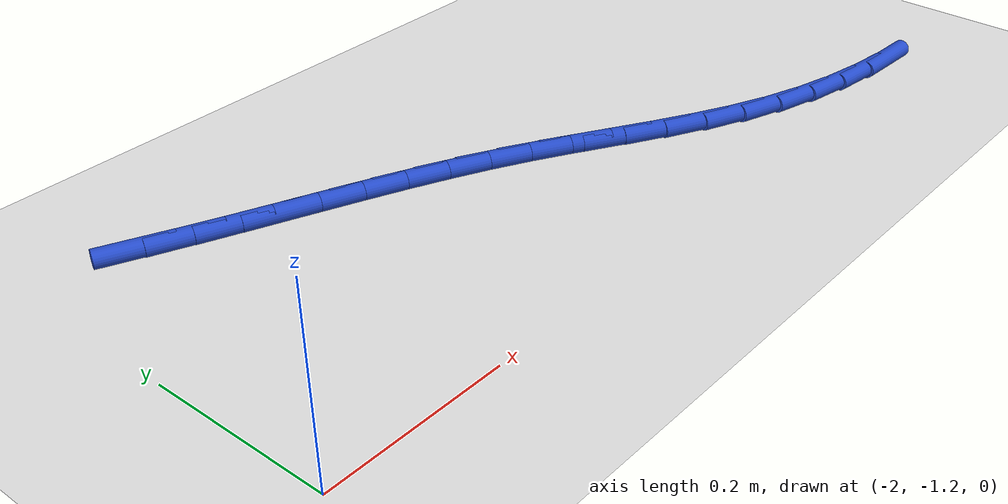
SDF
<sdf version="1.6">
 <world name="default">
  <model name="ground_plane">
   <static>1</static>
   <link name="link">
    <collision name="collision">
     <geometry><plane><normal>0 0 1</normal><size>100 100</size></plane></geometry>
     <surface><friction><ode><mu>100</mu><mu2>50</mu2></ode></friction></surface>
    </collision>
    <visual name="visual">
     <cast_shadows>0</cast_shadows>
     <geometry><plane><normal>0 0 1</normal><size>100 100</size></plane></geometry>
     <material>
      <script><uri>file://media/materials/scripts/gazebo.material</uri><name>Gazebo/WhiteGlow</name></script>
     </material>
    </visual>
   </link>
  </model>
  <model name="line">
   <link name="link_104">
    <pose>-1.89895759418302 -0.8300351882979553 0.01 0 1.57 -0.422106610386485</pose>
    <collision name="collision">
     <geometry><cylinder><radius>0.01</radius><length>0.08</length></cylinder></geometry>
    </collision>
    <visual name="visual">
     <material>
      <script><name>Gazebo/Blue</name><uri>file://media/materials/scripts/gazebo.material</uri></script>
     </material>
     <geometry><cylinder><radius>0.01</radius><length>0.08</length></cylinder></geometry>
    </visual>
   </link>
   <link name="link_105">
    <pose>-1.8554288558025298 -0.8495840167339894 0.01 0 1.57 -0.4031094485971626</pose>
    <collision name="collision">
     <geometry><cylinder><radius>0.01</radius><length>0.08</length></cylinder></geometry>
    </collision>
    <visual name="visual">
     <material>
      <script><name>Gazebo/Blue</name><uri>file://media/materials/scripts/gazebo.material</uri></script>
     </material>
     <geometry><cylinder><radius>0.01</radius><length>0.08</length></cylinder></geometry>
    </visual>
   </link>
   <link name="link_106">
    <pose>-1.812084770171128 -0.8680686798625749 0.01 0 1.57 -0.3915363712357688</pose>
    <collision name="collision">
     <geometry><cylinder><radius>0.01</radius><length>0.08</length></cylinder></geometry>
    </collision>
    <visual name="visual">
     <material>
      <script><name>Gazebo/Blue</name><uri>file://media/materials/scripts/gazebo.material</uri></script>
     </material>
     <geometry><cylinder><radius>0.01</radius><length>0.08</length></cylinder></geometry>
    </visual>
   </link>
   <link name="link_107">
    <pose>-1.7689749899728195 -0.8858666395894286 0.01 0 1.57 -0.38769974921096145</pose>
    <collision name="collision">
     <geometry><cylinder><radius>0.01</radius><length>0.08</length></cylinder></geometry>
    </collision>
    <visual name="visual">
     <material>
      <script><name>Gazebo/Blue</name><uri>file://media/materials/scripts/gazebo.material</uri></script>
     </material>
     <geometry><cylinder><radius>0.01</radius><length>0.08</length></cylinder></geometry>
    </visual>
   </link>
   <link name="link_108">
    <pose>-1.7261491678916094 -0.9033553578202694 0.01 0 1.57 -0.39181669513704925</pose>
    <collision name="collision">
     <geometry><cylinder><radius>0.01</radius><length>0.08</length></cylinder></geometry>
    </collision>
    <visual name="visual">
     <material>
      <script><name>Gazebo/Blue</name><uri>file://media/materials/scripts/gazebo.material</uri></script>
     </material>
     <geometry><cylinder><radius>0.01</radius><length>0.08</length></cylinder></geometry>
    </visual>
   </link>
   <link name="link_109">
    <pose>-1.6836569566115018 -0.920912296460815 0.01 0 1.57 -0.40400726017109834</pose>
    <collision name="collision">
     <geometry><cylinder><radius>0.01</radius><length>0.08</length></cylinder></geometry>
    </collision>
    <visual name="visual">
     <material>
      <script><name>Gazebo/Blue</name><uri>file://media/materials/scripts/gazebo.material</uri></script>
     </material>
     <geometry><cylinder><radius>0.01</radius><length>0.08</length></cylinder></geometry>
    </visual>
   </link>
   <link name="link_110">
    <pose>-1.6415480088165018 -0.9389149174167833 0.01 0 1.57 -0.42428073140122313</pose>
    <collision name="collision">
     <geometry><cylinder><radius>0.01</radius><length>0.08</length></cylinder></geometry>
    </collision>
    <visual name="visual">
     <material>
      <script><name>Gazebo/Blue</name><uri>file://media/materials/scripts/gazebo.material</uri></script>
     </material>
     <geometry><cylinder><radius>0.01</radius><length>0.08</length></cylinder></geometry>
    </visual>
   </link>
   <link name="link_111">
    <pose>-1.5998719771906127 -0.9577406825938926 0.01 0 1.57 -0.4525096705752231</pose>
    <collision name="collision">
     <geometry><cylinder><radius>0.01</radius><length>0.08</length></cylinder></geometry>
    </collision>
    <visual name="visual">
     <material>
      <script><name>Gazebo/Blue</name><uri>file://media/materials/scripts/gazebo.material</uri></script>
     </material>
     <geometry><cylinder><radius>0.01</radius><length>0.08</length></cylinder></geometry>
    </visual>
   </link>
   <link name="link_112">
    <pose>-1.5586785144178408 -0.9777670538978604 0.01 0 1.57 -0.4883415551285724</pose>
    <collision name="collision">
     <geometry><cylinder><radius>0.01</radius><length>0.08</length></cylinder></geometry>
    </collision>
    <visual name="visual">
     <material>
      <script><name>Gazebo/Blue</name><uri>file://media/materials/scripts/gazebo.material</uri></script>
     </material>
     <geometry><cylinder><radius>0.01</radius><length>0.08</length></cylinder></geometry>
    </visual>
   </link>
   <link name="link_113">
    <pose>-1.518016472378064 -0.9993691601938308 0.01 0 1.57 -0.5230682240721867</pose>
    <collision name="collision">
     <geometry><cylinder><radius>0.01</radius><length>0.08</length></cylinder></geometry>
    </collision>
    <visual name="visual">
     <material>
      <script><name>Gazebo/Blue</name><uri>file://media/materials/scripts/gazebo.material</uri></script>
     </material>
     <geometry><cylinder><radius>0.01</radius><length>0.08</length></cylinder></geometry>
    </visual>
   </link>
   <link name="link_114">
    <pose>-1.4778086017797263 -1.0225547506850414 0.01 0 1.57 -0.5396160837585424</pose>
    <collision name="collision">
     <geometry><cylinder><radius>0.01</radius><length>0.08</length></cylinder></geometry>
    </collision>
    <visual name="visual">
     <material>
      <script><name>Gazebo/Blue</name><uri>file://media/materials/scripts/gazebo.material</uri></script>
     </material>
     <geometry><cylinder><radius>0.01</radius><length>0.08</length></cylinder></geometry>
    </visual>
   </link>
   <link name="link_115">
    <pose>-1.4377152155546915 -1.0465669956216803 0.01 0 1.57 -0.5363248755173923</pose>
    <collision name="collision">
     <geometry><cylinder><radius>0.01</radius><length>0.08</length></cylinder></geometry>
    </collision>
    <visual name="visual">
     <material>
      <script><name>Gazebo/Blue</name><uri>file://media/materials/scripts/gazebo.material</uri></script>
     </material>
     <geometry><cylinder><radius>0.01</radius><length>0.08</length></cylinder></geometry>
    </visual>
   </link>
   <link name="link_116">
    <pose>-1.3973638743609846 -1.070553645686045 0.01 0 1.57 -0.5134376109689396</pose>
    <collision name="collision">
     <geometry><cylinder><radius>0.01</radius><length>0.08</length></cylinder></geometry>
    </collision>
    <visual name="visual">
     <material>
      <script><name>Gazebo/Blue</name><uri>file://media/materials/scripts/gazebo.material</uri></script>
     </material>
     <geometry><cylinder><radius>0.01</radius><length>0.08</length></cylinder></geometry>
    </visual>
   </link>
   <link name="link_117">
    <pose>-1.356382138856634 -1.0936624515604294 0.01 0 1.57 -0.47098370277783963</pose>
    <collision name="collision">
     <geometry><cylinder><radius>0.01</radius><length>0.08</length></cylinder></geometry>
    </collision>
    <visual name="visual">
     <material>
      <script><name>Gazebo/Blue</name><uri>file://media/materials/scripts/gazebo.material</uri></script>
     </material>
     <geometry><cylinder><radius>0.01</radius><length>0.08</length></cylinder></geometry>
    </visual>
   </link>
   <link name="link_118">
    <pose>-1.3143975696996648 -1.1150411639271318 0.01 0 1.57 -0.40905429757962175</pose>
    <collision name="collision">
     <geometry><cylinder><radius>0.01</radius><length>0.08</length></cylinder></geometry>
    </collision>
    <visual name="visual">
     <material>
      <script><name>Gazebo/Blue</name><uri>file://media/materials/scripts/gazebo.material</uri></script>
     </material>
     <geometry><cylinder><radius>0.01</radius><length>0.08</length></cylinder></geometry>
    </visual>
   </link>
   <link name="link_119">
    <pose>-1.2710379852922262 -1.133837861010738 0.01 0 1.57 -0.33354590158515574</pose>
    <collision name="collision">
     <geometry><cylinder><radius>0.01</radius><length>0.08</length></cylinder></geometry>
    </collision>
    <visual name="visual">
     <material>
      <script><name>Gazebo/Blue</name><uri>file://media/materials/scripts/gazebo.material</uri></script>
     </material>
     <geometry><cylinder><radius>0.01</radius><length>0.08</length></cylinder></geometry>
    </visual>
   </link>
   <link name="link_120">
    <pose>-1.2260958997685434 -1.149409917048872 0.01 0 1.57 -0.25919704069773486</pose>
    <collision name="collision">
     <geometry><cylinder><radius>0.01</radius><length>0.08</length></cylinder></geometry>
    </collision>
    <visual name="visual">
     <material>
      <script><name>Gazebo/Blue</name><uri>file://media/materials/scripts/gazebo.material</uri></script>
     </material>
     <geometry><cylinder><radius>0.01</radius><length>0.08</length></cylinder></geometry>
    </visual>
   </link>
   <link name="link_121">
    <pose>-1.1798109581678675 -1.1616829220704785 0.01 0 1.57 -0.18787578051784626</pose>
    <collision name="collision">
     <geometry><cylinder><radius>0.01</radius><length>0.08</length></cylinder></geometry>
    </collision>
    <visual name="visual">
     <material>
      <script><name>Gazebo/Blue</name><uri>file://media/materials/scripts/gazebo.material</uri></script>
     </material>
     <geometry><cylinder><radius>0.01</radius><length>0.08</length></cylinder></geometry>
    </visual>
   </link>
   <link name="link_122">
    <pose>-1.1324979595790652 -1.1706779721795464 0.01 0 1.57 -0.11891656723506218</pose>
    <collision name="collision">
     <geometry><cylinder><radius>0.01</radius><length>0.08</length></cylinder></geometry>
    </collision>
    <visual name="visual">
     <material>
      <script><name>Gazebo/Blue</name><uri>file://media/materials/scripts/gazebo.material</uri></script>
     </material>
     <geometry><cylinder><radius>0.01</radius><length>0.08</length></cylinder></geometry>
    </visual>
   </link>
   <link name="link_123">
    <pose>-1.0844717030909992 -1.1764161634800652 0.01 0 1.57 -0.051630754700167335</pose>
    <collision name="collision">
     <geometry><cylinder><radius>0.01</radius><length>0.08</length></cylinder></geometry>
    </collision>
    <visual name="visual">
     <material>
      <script><name>Gazebo/Blue</name><uri>file://media/materials/scripts/gazebo.material</uri></script>
     </material>
     <geometry><cylinder><radius>0.01</radius><length>0.08</length></cylinder></geometry>
    </visual>
   </link>
  </model>
 </world>
</sdf>
